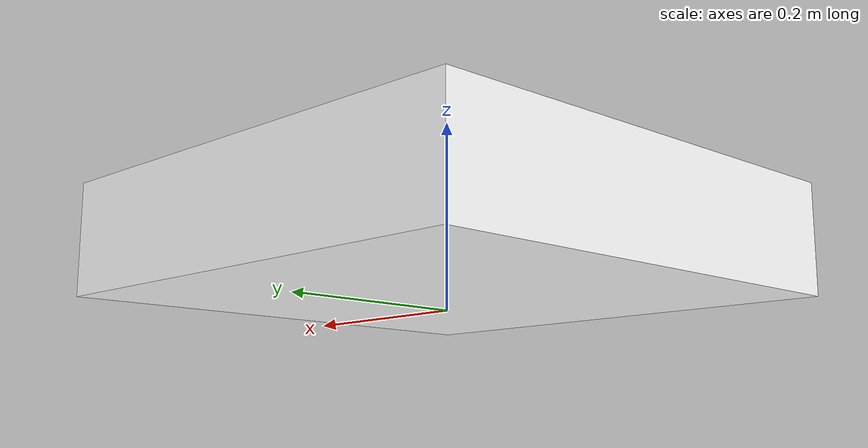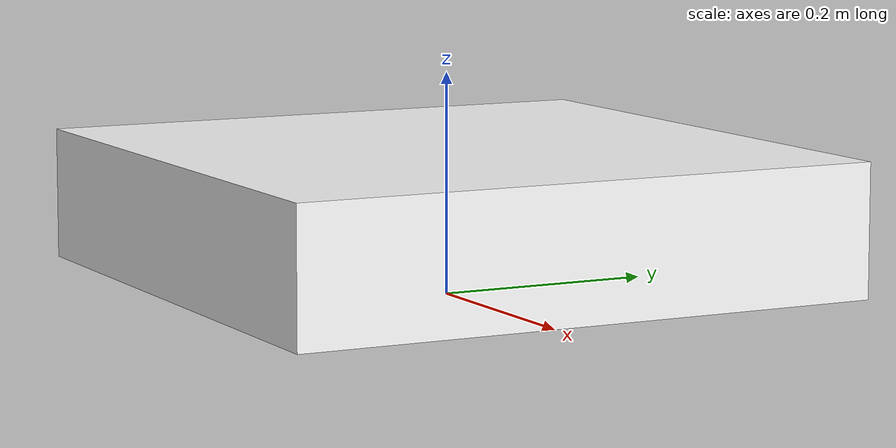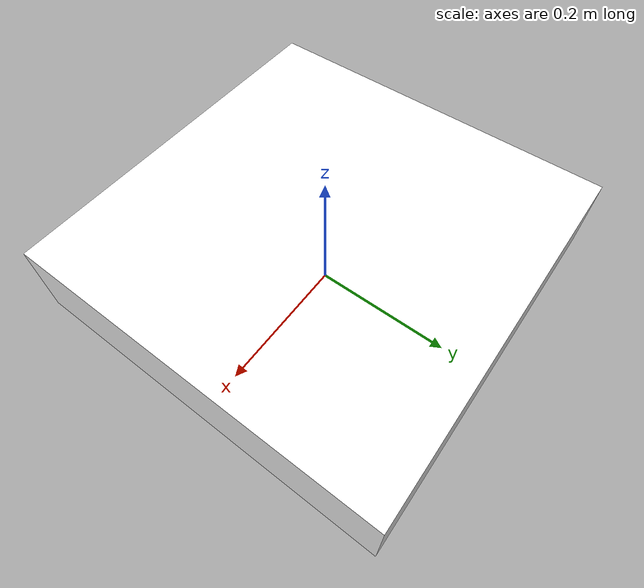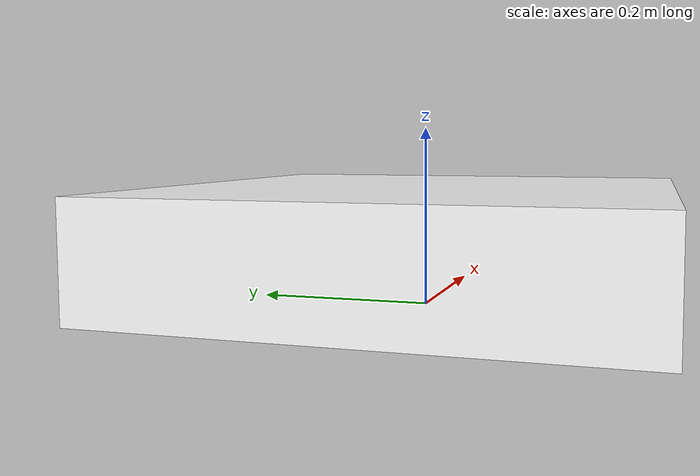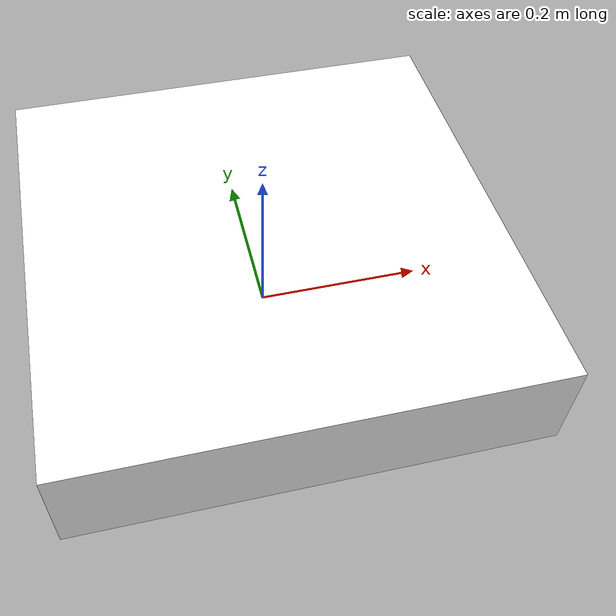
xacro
<?xml version="1.0"?>
<robot xmlns:xacro="http://www.ros.org/wiki/xacro">

	<material name="white">
		<color rgba="1 1 1 1"/>
	</material>

	<link name="base_link">

	</link>

	<joint name="chassis_joint" type="fixed">
		<parent link="base_link"/>
		<child link="chassis"/>
		<origin xyz="0 0 0"/>
	</joint>

	<link name="chassis">
		<visual>
			<origin xyz="0 0 0.075"/>
			<geometry>
				<box size="0.54 0.54 0.12"/>
			</geometry>
			<material name="white"/>
		</visual>
	</link>

</robot>
